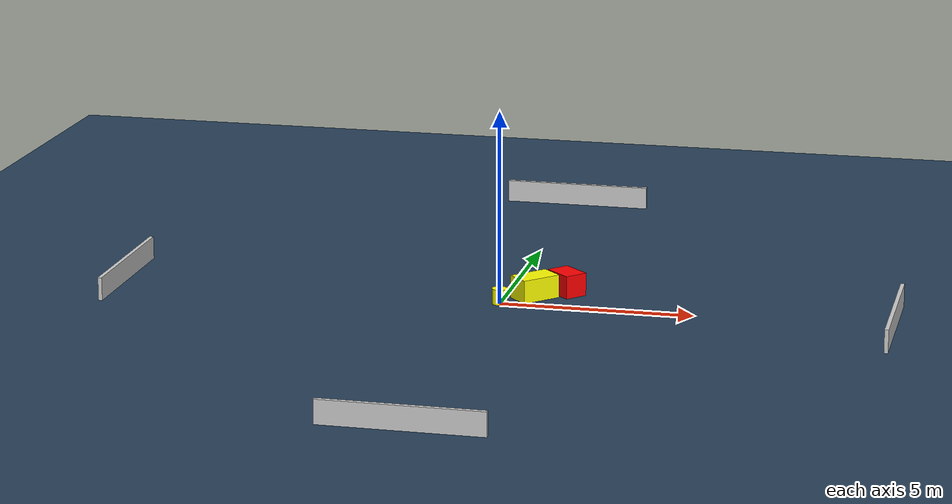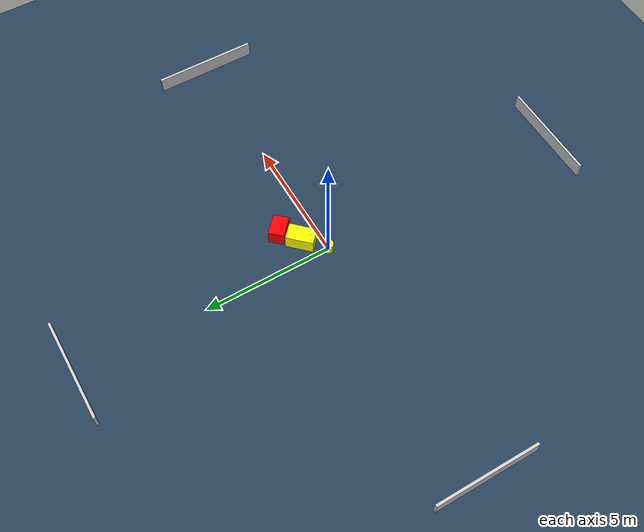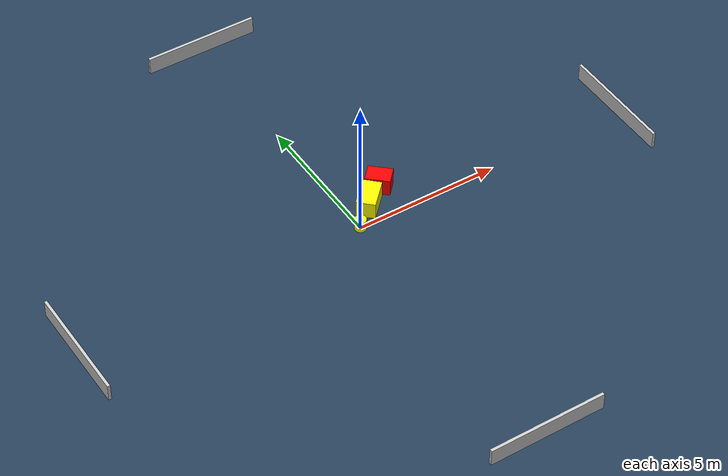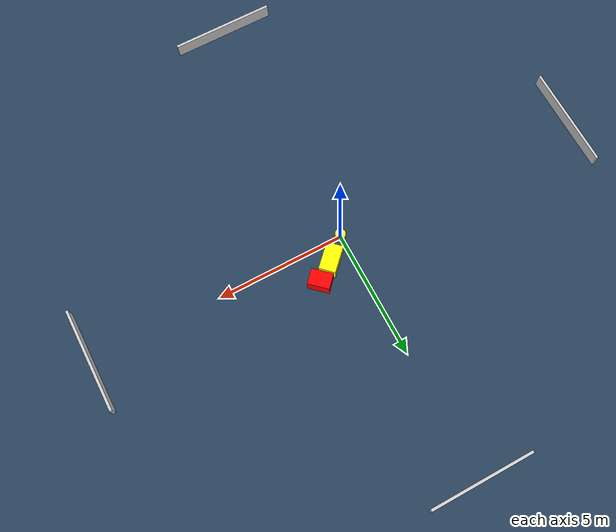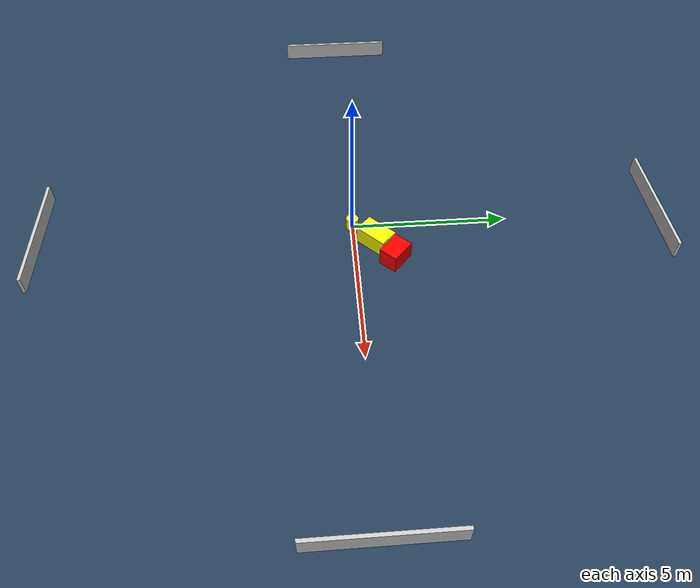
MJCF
<?xml version="1.0" ?>
<mujoco model="generated_environment">
  <option timestep="0.01" integrator="RK4" cone="elliptic"/>
  <default>
    <geom density="1"/>
  </default>
  <asset>
    <texture builtin="gradient" height="3072" name="skybox" rgb1="0.3 0.5 0.7" rgb2="0 0 0" type="skybox" width="512"/>
    <texture builtin="checker" height="300" name="groundplane" rgb1="0.2 0.3 0.4" rgb2="0.1 0.2 0.3" type="2d" width="300"/>
    <material name="groundplane" reflectance="0.2" texrepeat="5 5" texture="groundplane"/>
  </asset>
  <worldbody>
    <light dir="0 0 -1" directional="true" pos="0 0 1.5"/>
    <geom condim="3" friction="0.5 0.005 0.001" material="groundplane" name="floor" pos="0 0 0" size="0 0 0.05" type="plane"/>
    <body name="walls">
      <geom name="wall_1" condim="4" pos="-10.0 0.0 0.3" rgba="0.800000011920929 0.800000011920929 0.800000011920929 1.0" size="0.05 2.0 0.3" type="box"/>
      <geom name="wall_2" condim="4" pos="10.0 0.0 0.3" rgba="0.800000011920929 0.800000011920929 0.800000011920929 1.0" size="0.05 2.0 0.3" type="box"/>
      <geom name="wall_3" condim="4" pos="0.0 -10.0 0.3" rgba="0.800000011920929 0.800000011920929 0.800000011920929 1.0" size="2.0 0.05 0.3" type="box"/>
      <geom name="wall_4" condim="4" pos="0.0 10.0 0.3" rgba="0.800000011920929 0.800000011920929 0.800000011920929 1.0" size="2.0 0.05 0.3" type="box"/>
    </body>
    <body name="robot">
      <joint name="joint_x" type="slide" pos="0 0 0" axis="1 0 0"/>
      <joint name="joint_y" type="slide" pos="0 0 0" axis="0 1 0"/>
      <geom name="robot" type="cylinder" pos="0.0 0.0 0.2" size="0.2 0.2 0.0" mass="5.0" friction="1.0 0.005 0.0001" condim="4" rgba="1.0 1.0 0.0 1.0"/>
    </body>
    <body name="obstacle_1_movable">
      <geom name="obstacle_1_movable" condim="4" pos="0.7641740365316804 0.697338905442651 0.3" euler="0 0 315.4952368995521" friction="0.0 0.005 0.001" rgba="1.0 1.0 0.0 1.0" size="0.31984142013347444 0.5288710816990903 0.3" type="box" mass="0.1"/>
      <joint type="free"/>
    </body>
    <body name="obstacle_2_static">
      <geom name="obstacle_2_static" condim="4" pos="1.4882778342761032 1.2338712059781447 0.3" euler="0 0 227.23738476847646" friction="0.0 0.005 0.001" rgba="1.0 0.0 0.0 1.0" size="0.3030428825260236 0.41394209348324706 0.3" type="box"/>
    </body>
  </worldbody>
  <actuator>
    <motor name="actuator_x" joint="joint_x" gear="1" ctrlrange="-1 1"/>
    <motor name="actuator_y" joint="joint_y" gear="1" ctrlrange="-1 1"/>
  </actuator>
</mujoco>
